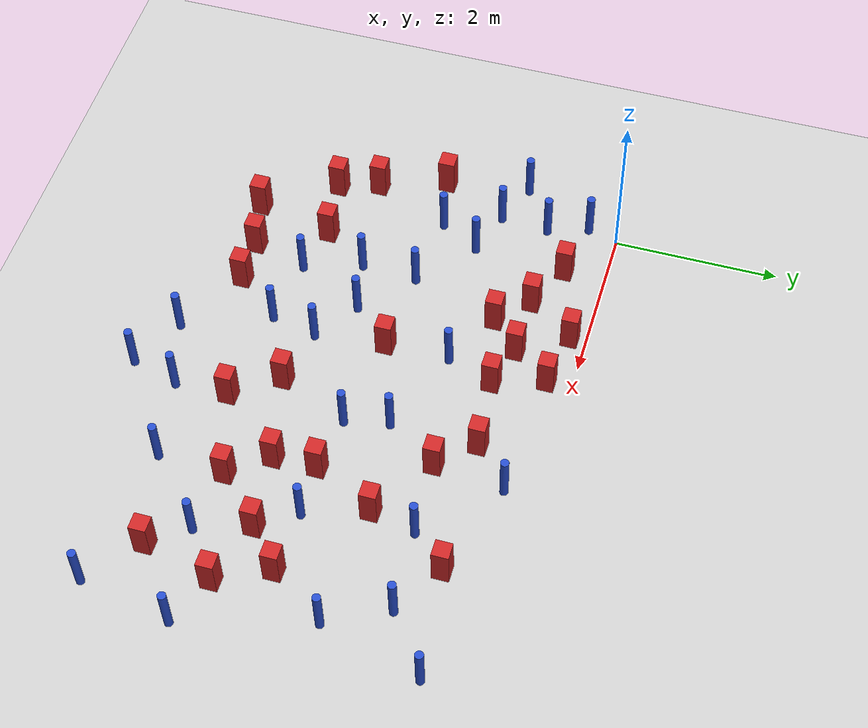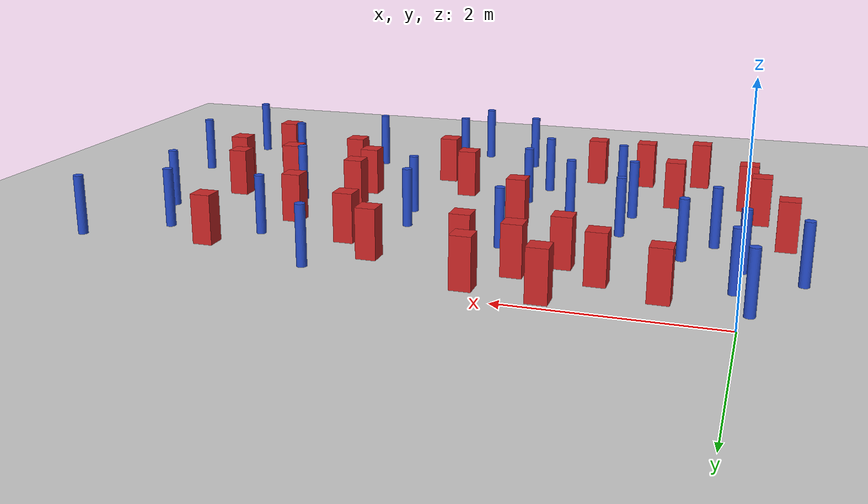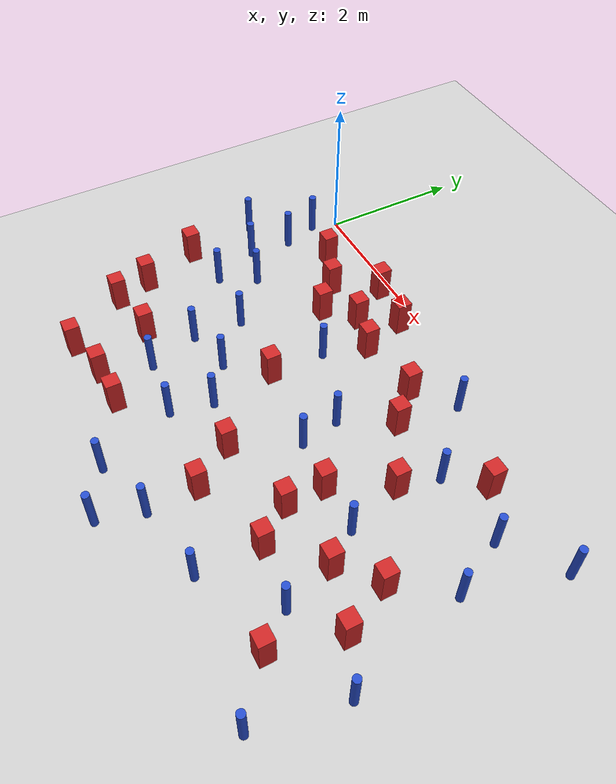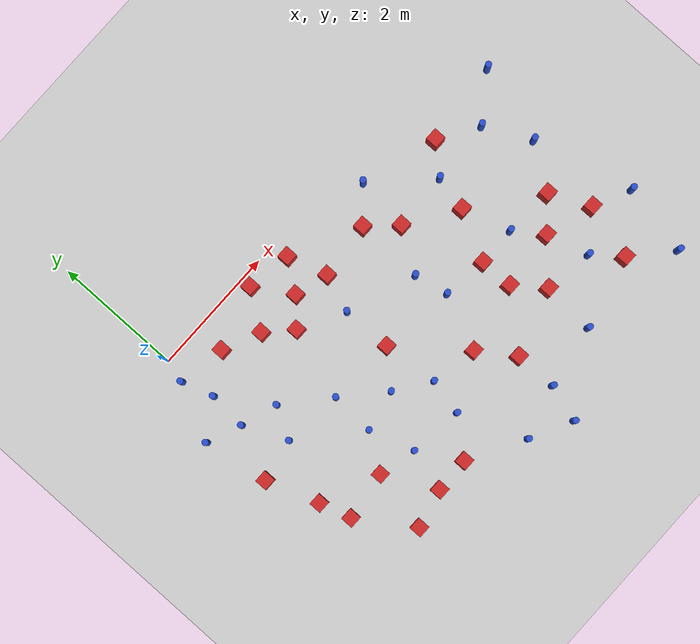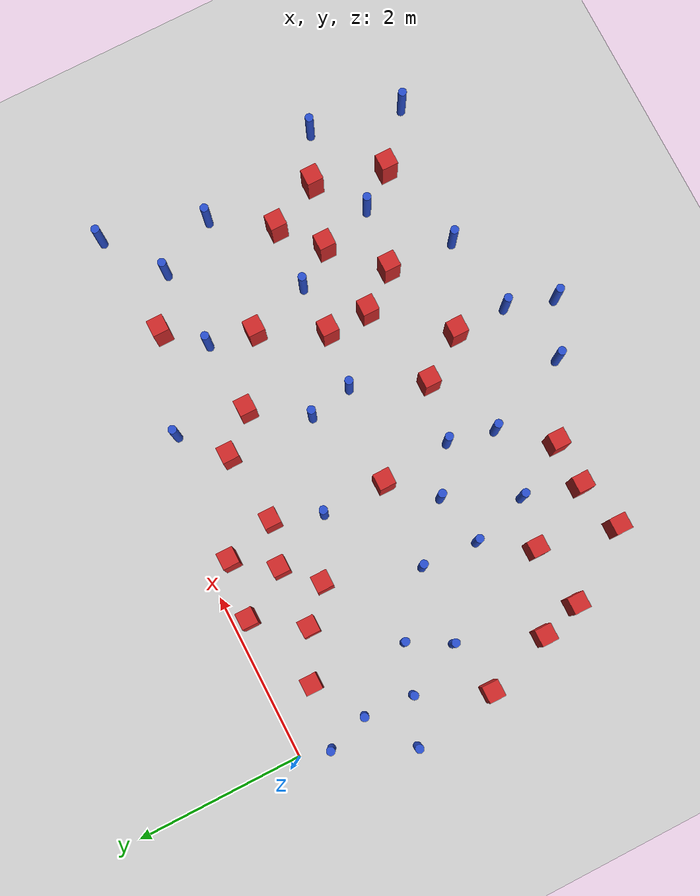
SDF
<sdf version="1.6">
 <world name="default">
  <model name="ground_plane">
   <static>1</static>
   <link name="link">
    <collision name="collision">
     <geometry><plane><normal>0 0 1</normal><size>100 100</size></plane></geometry>
     <surface><friction><ode><mu>100</mu><mu2>50</mu2></ode></friction></surface>
    </collision>
    <visual name="visual">
     <cast_shadows>0</cast_shadows>
     <geometry><plane><normal>0 0 1</normal><size>100 100</size></plane></geometry>
     <material>
      <ambient>1.0 1.0 1.0 1.0</ambient>
      <diffuse>0.8 0.8 0.8 1.0</diffuse>
      <specular>0.01 0.01 0.01 1.000000</specular>
     </material>
    </visual>
   </link>
  </model>
  <model name="pole_obstacle2">
   <static>true</static>
   <pose>2.2962242068 -1.4888534437 2.88873142074e-08 -9.90536689395e-09 4.60219949e-07 -1.20965994953e-07</pose>
   <link name="link">
    <pose>0 0 0.3 0 -0 0</pose>
    <inertial>
     <mass>1</mass>
     <inertia><ixx>0.145833</ixx><ixy>0</ixy><ixz>0</ixz><iyy>0.145833</iyy><iyz>0</iyz><izz>0.125</izz></inertia>
    </inertial>
    <collision name="collision">
     <geometry><cylinder><radius>0.05</radius><length>.6</length></cylinder></geometry>
    </collision>
    <visual name="visual">
     <geometry><cylinder><radius>0.05</radius><length>.6</length></cylinder></geometry>
     <material>
      <script><name>Gazebo/Blue</name><uri>file://media/materials/scripts/gazebo.material</uri></script>
     </material>
    </visual>
   </link>
  </model>
  <model name="square_post_obstacle3">
   <static>true</static>
   <pose>0.649831899917 -4.38141495095 8.22691968438e-08 7.2212513382e-06 -7.54495500217e-07 2.29674213826e-05</pose>
   <link name="link">
    <pose>0 0 0.25 0 -0 0</pose>
    <inertial>
     <mass>100</mass>
     <inertia>
      <ixx>0.166667</ixx>
      <ixy>0</ixy>
      <ixz>0</ixz>
      <iyy>0.166667</iyy>
      <iyz>0</iyz>
      <izz>0.166667</izz>
     </inertia>
    </inertial>
    <collision name="collision"><geometry><box><size>.2 .2 .5</size></box></geometry></collision>
    <visual name="visual">
     <geometry><box><size>.2 .2 .5</size></box></geometry>
     <material>
      <script><name>Gazebo/Red</name><uri>file://media/materials/scripts/gazebo.material</uri></script>
     </material>
    </visual>
   </link>
  </model>
  <model name="square_post_obstacle9">
   <static>true</static>
   <pose>4.55265677915 -1.7423102586 8.22691968438e-08 7.2212513382e-06 -7.54495500217e-07 2.29674213826e-05</pose>
   <link name="link">
    <pose>0 0 0.25 0 -0 0</pose>
    <inertial>
     <mass>100</mass>
     <inertia>
      <ixx>0.166667</ixx>
      <ixy>0</ixy>
      <ixz>0</ixz>
      <iyy>0.166667</iyy>
      <iyz>0</iyz>
      <izz>0.166667</izz>
     </inertia>
    </inertial>
    <collision name="collision"><geometry><box><size>.2 .2 .5</size></box></geometry></collision>
    <visual name="visual">
     <geometry><box><size>.2 .2 .5</size></box></geometry>
     <material>
      <script><name>Gazebo/Red</name><uri>file://media/materials/scripts/gazebo.material</uri></script>
     </material>
    </visual>
   </link>
  </model>
  <model name="pole_obstacle19">
   <static>true</static>
   <pose>0.588792365481 -1.63276097775 2.88873142074e-08 -9.90536689855e-09 4.60219948989e-07 -1.20965994962e-07</pose>
   <link name="link">
    <pose>0 0 0.3 0 -0 0</pose>
    <inertial>
     <mass>1</mass>
     <inertia><ixx>0.145833</ixx><ixy>0</ixy><ixz>0</ixz><iyy>0.145833</iyy><iyz>0</iyz><izz>0.125</izz></inertia>
    </inertial>
    <collision name="collision">
     <geometry><cylinder><radius>0.05</radius><length>.6</length></cylinder></geometry>
    </collision>
    <visual name="visual">
     <geometry><cylinder><radius>0.05</radius><length>.6</length></cylinder></geometry>
     <material>
      <script><name>Gazebo/Blue</name><uri>file://media/materials/scripts/gazebo.material</uri></script>
     </material>
    </visual>
   </link>
  </model>
  <model name="pole_obstacle20">
   <static>true</static>
   <pose>1.43550185561 -3.58304347874 2.88873142074e-08 -9.90536689791e-09 4.6021994899e-07 -1.20965994959e-07</pose>
   <link name="link">
    <pose>0 0 0.3 0 -0 0</pose>
    <inertial>
     <mass>1</mass>
     <inertia><ixx>0.145833</ixx><ixy>0</ixy><ixz>0</ixz><iyy>0.145833</iyy><iyz>0</iyz><izz>0.125</izz></inertia>
    </inertial>
    <collision name="collision">
     <geometry><cylinder><radius>0.05</radius><length>.6</length></cylinder></geometry>
    </collision>
    <visual name="visual">
     <geometry><cylinder><radius>0.05</radius><length>.6</length></cylinder></geometry>
     <material>
      <script><name>Gazebo/Blue</name><uri>file://media/materials/scripts/gazebo.material</uri></script>
     </material>
    </visual>
   </link>
  </model>
  <model name="pole_obstacle25">
   <static>true</static>
   <pose>5.66885229057 -1.13898330603 2.88873142074e-08 -9.90536689445e-09 4.60219948999e-07 -1.20965994956e-07</pose>
   <link name="link">
    <pose>0 0 0.3 0 -0 0</pose>
    <inertial>
     <mass>1</mass>
     <inertia><ixx>0.145833</ixx><ixy>0</ixy><ixz>0</ixz><iyy>0.145833</iyy><iyz>0</iyz><izz>0.125</izz></inertia>
    </inertial>
    <collision name="collision">
     <geometry><cylinder><radius>0.05</radius><length>.6</length></cylinder></geometry>
    </collision>
    <visual name="visual">
     <geometry><cylinder><radius>0.05</radius><length>.6</length></cylinder></geometry>
     <material>
      <script><name>Gazebo/Blue</name><uri>file://media/materials/scripts/gazebo.material</uri></script>
     </material>
    </visual>
   </link>
  </model>
  <model name="pole_obstacle38">
   <static>true</static>
   <pose>2.38835338203 -3.12073264131 2.88873142074e-08 -9.90536690232e-09 4.6021994898e-07 -1.20965994968e-07</pose>
   <link name="link">
    <pose>0 0 0.3 0 -0 0</pose>
    <inertial>
     <mass>1</mass>
     <inertia><ixx>0.145833</ixx><ixy>0</ixy><ixz>0</ixz><iyy>0.145833</iyy><iyz>0</iyz><izz>0.125</izz></inertia>
    </inertial>
    <collision name="collision">
     <geometry><cylinder><radius>0.05</radius><length>.6</length></cylinder></geometry>
    </collision>
    <visual name="visual">
     <geometry><cylinder><radius>0.05</radius><length>.6</length></cylinder></geometry>
     <material>
      <script><name>Gazebo/Blue</name><uri>file://media/materials/scripts/gazebo.material</uri></script>
     </material>
    </visual>
   </link>
  </model>
  <model name="square_post_obstacle33">
   <static>true</static>
   <pose>0.0892033888805 -3.54546931048 8.22691968438e-08 7.22125133819e-06 -7.54495500217e-07 2.29674213826e-05</pose>
   <link name="link">
    <pose>0 0 0.25 0 -0 0</pose>
    <inertial>
     <mass>100</mass>
     <inertia>
      <ixx>0.166667</ixx>
      <ixy>0</ixy>
      <ixz>0</ixz>
      <iyy>0.166667</iyy>
      <iyz>0</iyz>
      <izz>0.166667</izz>
     </inertia>
    </inertial>
    <collision name="collision"><geometry><box><size>.2 .2 .5</size></box></geometry></collision>
    <visual name="visual">
     <geometry><box><size>.2 .2 .5</size></box></geometry>
     <material>
      <script><name>Gazebo/Red</name><uri>file://media/materials/scripts/gazebo.material</uri></script>
     </material>
    </visual>
   </link>
  </model>
  <model name="square_post_obstacle36">
   <static>true</static>
   <pose>4.52311479573 -3.47080743803 8.22691968438e-08 7.2212513382e-06 -7.54495500217e-07 2.29674213826e-05</pose>
   <link name="link">
    <pose>0 0 0.25 0 -0 0</pose>
    <inertial>
     <mass>100</mass>
     <inertia>
      <ixx>0.166667</ixx>
      <ixy>0</ixy>
      <ixz>0</ixz>
      <iyy>0.166667</iyy>
      <iyz>0</iyz>
      <izz>0.166667</izz>
     </inertia>
    </inertial>
    <collision name="collision"><geometry><box><size>.2 .2 .5</size></box></geometry></collision>
    <visual name="visual">
     <geometry><box><size>.2 .2 .5</size></box></geometry>
     <material>
      <script><name>Gazebo/Red</name><uri>file://media/materials/scripts/gazebo.material</uri></script>
     </material>
    </visual>
   </link>
  </model>
  <model name="square_post_obstacle40">
   <static>true</static>
   <pose>3.7764458147 -1.24048378066 8.22691968438e-08 7.2212513382e-06 -7.54495500217e-07 2.29674213826e-05</pose>
   <link name="link">
    <pose>0 0 0.25 0 -0 0</pose>
    <inertial>
     <mass>100</mass>
     <inertia>
      <ixx>0.166667</ixx>
      <ixy>0</ixy>
      <ixz>0</ixz>
      <iyy>0.166667</iyy>
      <iyz>0</iyz>
      <izz>0.166667</izz>
     </inertia>
    </inertial>
    <collision name="collision"><geometry><box><size>.2 .2 .5</size></box></geometry></collision>
    <visual name="visual">
     <geometry><box><size>.2 .2 .5</size></box></geometry>
     <material>
      <script><name>Gazebo/Red</name><uri>file://media/materials/scripts/gazebo.material</uri></script>
     </material>
    </visual>
   </link>
  </model>
  <model name="pole_obstacle56">
   <static>true</static>
   <pose>3.32120589684 -5.03993987062 2.88873142074e-08 -9.90536689859e-09 4.60219948989e-07 -1.20965994961e-07</pose>
   <link name="link">
    <pose>0 0 0.3 0 -0 0</pose>
    <inertial>
     <mass>1</mass>
     <inertia><ixx>0.145833</ixx><ixy>0</ixy><ixz>0</ixz><iyy>0.145833</iyy><iyz>0</iyz><izz>0.125</izz></inertia>
    </inertial>
    <collision name="collision">
     <geometry><cylinder><radius>0.05</radius><length>.6</length></cylinder></geometry>
    </collision>
    <visual name="visual">
     <geometry><cylinder><radius>0.05</radius><length>.6</length></cylinder></geometry>
     <material>
      <script><name>Gazebo/Blue</name><uri>file://media/materials/scripts/gazebo.material</uri></script>
     </material>
    </visual>
   </link>
  </model>
  <model name="square_post_obstacle45">
   <static>true</static>
   <pose>4.17633040854 -3.01495379571 8.22691968438e-08 7.2212513382e-06 -7.54495500217e-07 2.29674213826e-05</pose>
   <link name="link">
    <pose>0 0 0.25 0 -0 0</pose>
    <inertial>
     <mass>100</mass>
     <inertia>
      <ixx>0.166667</ixx>
      <ixy>0</ixy>
      <ixz>0</ixz>
      <iyy>0.166667</iyy>
      <iyz>0</iyz>
      <izz>0.166667</izz>
     </inertia>
    </inertial>
    <collision name="collision"><geometry><box><size>.2 .2 .5</size></box></geometry></collision>
    <visual name="visual">
     <geometry><box><size>.2 .2 .5</size></box></geometry>
     <material>
      <script><name>Gazebo/Red</name><uri>file://media/materials/scripts/gazebo.material</uri></script>
     </material>
    </visual>
   </link>
  </model>
  <model name="pole_obstacle64">
   <static>true</static>
   <pose>0.0255443950892 -1.44876111784 2.88873142074e-08 -9.9053669004e-09 4.60219948984e-07 -1.20965994962e-07</pose>
   <link name="link">
    <pose>0 0 0.3 0 -0 0</pose>
    <inertial>
     <mass>1</mass>
     <inertia><ixx>0.145833</ixx><ixy>0</ixy><ixz>0</ixz><iyy>0.145833</iyy><iyz>0</iyz><izz>0.125</izz></inertia>
    </inertial>
    <collision name="collision">
     <geometry><cylinder><radius>0.05</radius><length>.6</length></cylinder></geometry>
    </collision>
    <visual name="visual">
     <geometry><cylinder><radius>0.05</radius><length>.6</length></cylinder></geometry>
     <material>
      <script><name>Gazebo/Blue</name><uri>file://media/materials/scripts/gazebo.material</uri></script>
     </material>
    </visual>
   </link>
  </model>
  <model name="square_post_obstacle56">
   <static>true</static>
   <pose>1.62164734669 -0.188410075844 8.22691968438e-08 7.2212513382e-06 -7.54495500217e-07 2.29674213826e-05</pose>
   <link name="link">
    <pose>0 0 0.25 0 -0 0</pose>
    <inertial>
     <mass>100</mass>
     <inertia>
      <ixx>0.166667</ixx>
      <ixy>0</ixy>
      <ixz>0</ixz>
      <iyy>0.166667</iyy>
      <iyz>0</iyz>
      <izz>0.166667</izz>
     </inertia>
    </inertial>
    <collision name="collision"><geometry><box><size>.2 .2 .5</size></box></geometry></collision>
    <visual name="visual">
     <geometry><box><size>.2 .2 .5</size></box></geometry>
     <material>
      <script><name>Gazebo/Red</name><uri>file://media/materials/scripts/gazebo.material</uri></script>
     </material>
    </visual>
   </link>
  </model>
  <model name="square_post_obstacle62">
   <static>true</static>
   <pose>5.05585036338 -0.770505505517 8.22691968438e-08 7.2212513382e-06 -7.54495500217e-07 2.29674213826e-05</pose>
   <link name="link">
    <pose>0 0 0.25 0 -0 0</pose>
    <inertial>
     <mass>100</mass>
     <inertia>
      <ixx>0.166667</ixx>
      <ixy>0</ixy>
      <ixz>0</ixz>
      <iyy>0.166667</iyy>
      <iyz>0</iyz>
      <izz>0.166667</izz>
     </inertia>
    </inertial>
    <collision name="collision"><geometry><box><size>.2 .2 .5</size></box></geometry></collision>
    <visual name="visual">
     <geometry><box><size>.2 .2 .5</size></box></geometry>
     <material>
      <script><name>Gazebo/Red</name><uri>file://media/materials/scripts/gazebo.material</uri></script>
     </material>
    </visual>
   </link>
  </model>
  <model name="pole_obstacle83">
   <static>true</static>
   <pose>3.49573494244 -4.46277911587 2.88873142074e-08 -9.90536689859e-09 4.60219948989e-07 -1.20965994961e-07</pose>
   <link name="link">
    <pose>0 0 0.3 0 -0 0</pose>
    <inertial>
     <mass>1</mass>
     <inertia><ixx>0.145833</ixx><ixy>0</ixy><ixz>0</ixz><iyy>0.145833</iyy><iyz>0</iyz><izz>0.125</izz></inertia>
    </inertial>
    <collision name="collision">
     <geometry><cylinder><radius>0.05</radius><length>.6</length></cylinder></geometry>
    </collision>
    <visual name="visual">
     <geometry><cylinder><radius>0.05</radius><length>.6</length></cylinder></geometry>
     <material>
      <script><name>Gazebo/Blue</name><uri>file://media/materials/scripts/gazebo.material</uri></script>
     </material>
    </visual>
   </link>
  </model>
  <model name="pole_obstacle84">
   <static>true</static>
   <pose>1.25003998977 -2.2059578337 2.88873142074e-08 -9.90536689791e-09 4.6021994899e-07 -1.20965994959e-07</pose>
   <link name="link">
    <pose>0 0 0.3 0 -0 0</pose>
    <inertial>
     <mass>1</mass>
     <inertia><ixx>0.145833</ixx><ixy>0</ixy><ixz>0</ixz><iyy>0.145833</iyy><iyz>0</iyz><izz>0.125</izz></inertia>
    </inertial>
    <collision name="collision">
     <geometry><cylinder><radius>0.05</radius><length>.6</length></cylinder></geometry>
    </collision>
    <visual name="visual">
     <geometry><cylinder><radius>0.05</radius><length>.6</length></cylinder></geometry>
     <material>
      <script><name>Gazebo/Blue</name><uri>file://media/materials/scripts/gazebo.material</uri></script>
     </material>
    </visual>
   </link>
  </model>
  <model name="square_post_obstacle77">
   <static>true</static>
   <pose>5.61824060183 -4.00313550128 8.22691968438e-08 7.2212513382e-06 -7.54495500217e-07 2.29674213826e-05</pose>
   <link name="link">
    <pose>0 0 0.25 0 -0 0</pose>
    <inertial>
     <mass>100</mass>
     <inertia>
      <ixx>0.166667</ixx>
      <ixy>0</ixy>
      <ixz>0</ixz>
      <iyy>0.166667</iyy>
      <iyz>0</iyz>
      <izz>0.166667</izz>
     </inertia>
    </inertial>
    <collision name="collision"><geometry><box><size>.2 .2 .5</size></box></geometry></collision>
    <visual name="visual">
     <geometry><box><size>.2 .2 .5</size></box></geometry>
     <material>
      <script><name>Gazebo/Red</name><uri>file://media/materials/scripts/gazebo.material</uri></script>
     </material>
    </visual>
   </link>
  </model>
  <model name="square_post_obstacle89">
   <static>true</static>
   <pose>1.8095217288 -4.22510068687 8.22691968438e-08 7.2212513382e-06 -7.54495500217e-07 2.29674213826e-05</pose>
   <link name="link">
    <pose>0 0 0.25 0 -0 0</pose>
    <inertial>
     <mass>100</mass>
     <inertia>
      <ixx>0.166667</ixx>
      <ixy>0</ixy>
      <ixz>0</ixz>
      <iyy>0.166667</iyy>
      <iyz>0</iyz>
      <izz>0.166667</izz>
     </inertia>
    </inertial>
    <collision name="collision"><geometry><box><size>.2 .2 .5</size></box></geometry></collision>
    <visual name="visual">
     <geometry><box><size>.2 .2 .5</size></box></geometry>
     <material>
      <script><name>Gazebo/Red</name><uri>file://media/materials/scripts/gazebo.material</uri></script>
     </material>
    </visual>
   </link>
  </model>
  <model name="square_post_obstacle90">
   <static>true</static>
   <pose>3.10743166794 -3.25855165849 8.22691968438e-08 7.2212513382e-06 -7.54495500217e-07 2.29674213826e-05</pose>
   <link name="link">
    <pose>0 0 0.25 0 -0 0</pose>
    <inertial>
     <mass>100</mass>
     <inertia>
      <ixx>0.166667</ixx>
      <ixy>0</ixy>
      <ixz>0</ixz>
      <iyy>0.166667</iyy>
      <iyz>0</iyz>
      <izz>0.166667</izz>
     </inertia>
    </inertial>
    <collision name="collision"><geometry><box><size>.2 .2 .5</size></box></geometry></collision>
    <visual name="visual">
     <geometry><box><size>.2 .2 .5</size></box></geometry>
     <material>
      <script><name>Gazebo/Red</name><uri>file://media/materials/scripts/gazebo.material</uri></script>
     </material>
    </visual>
   </link>
  </model>
  <model name="square_post_obstacle92">
   <static>true</static>
   <pose>1.25656775713 -4.23679575135 8.22691968438e-08 7.2212513382e-06 -7.54495500217e-07 2.29674213826e-05</pose>
   <link name="link">
    <pose>0 0 0.25 0 -0 0</pose>
    <inertial>
     <mass>100</mass>
     <inertia>
      <ixx>0.166667</ixx>
      <ixy>0</ixy>
      <ixz>0</ixz>
      <iyy>0.166667</iyy>
      <iyz>0</iyz>
      <izz>0.166667</izz>
     </inertia>
    </inertial>
    <collision name="collision"><geometry><box><size>.2 .2 .5</size></box></geometry></collision>
    <visual name="visual">
     <geometry><box><size>.2 .2 .5</size></box></geometry>
     <material>
      <script><name>Gazebo/Red</name><uri>file://media/materials/scripts/gazebo.material</uri></script>
     </material>
    </visual>
   </link>
  </model>
  <model name="square_post_obstacle94">
   <static>true</static>
   <pose>2.30671741514 -2.26106769189 8.22691968438e-08 7.2212513382e-06 -7.54495500217e-07 2.29674213826e-05</pose>
   <link name="link">
    <pose>0 0 0.25 0 -0 0</pose>
    <inertial>
     <mass>100</mass>
     <inertia>
      <ixx>0.166667</ixx>
      <ixy>0</ixy>
      <ixz>0</ixz>
      <iyy>0.166667</iyy>
      <iyz>0</iyz>
      <izz>0.166667</izz>
     </inertia>
    </inertial>
    <collision name="collision"><geometry><box><size>.2 .2 .5</size></box></geometry></collision>
    <visual name="visual">
     <geometry><box><size>.2 .2 .5</size></box></geometry>
     <material>
      <script><name>Gazebo/Red</name><uri>file://media/materials/scripts/gazebo.material</uri></script>
     </material>
    </visual>
   </link>
  </model>
  <model name="square_post_obstacle99">
   <static>true</static>
   <pose>5.85339930895 -3.14866693555 8.22691968438e-08 7.2212513382e-06 -7.54495500217e-07 2.29674213826e-05</pose>
   <link name="link">
    <pose>0 0 0.25 0 -0 0</pose>
    <inertial>
     <mass>100</mass>
     <inertia>
      <ixx>0.166667</ixx>
      <ixy>0</ixy>
      <ixz>0</ixz>
      <iyy>0.166667</iyy>
      <iyz>0</iyz>
      <izz>0.166667</izz>
     </inertia>
    </inertial>
    <collision name="collision"><geometry><box><size>.2 .2 .5</size></box></geometry></collision>
    <visual name="visual">
     <geometry><box><size>.2 .2 .5</size></box></geometry>
     <material>
      <script><name>Gazebo/Red</name><uri>file://media/materials/scripts/gazebo.material</uri></script>
     </material>
    </visual>
   </link>
  </model>
  <model name="square_post_obstacle101">
   <static>true</static>
   <pose>-0.0577121408246 -3.0572782452 8.22691968438e-08 7.2212513382e-06 -7.54495500217e-07 2.29674213826e-05</pose>
   <link name="link">
    <pose>0 0 0.25 0 -0 0</pose>
    <inertial>
     <mass>100</mass>
     <inertia>
      <ixx>0.166667</ixx>
      <ixy>0</ixy>
      <ixz>0</ixz>
      <iyy>0.166667</iyy>
      <iyz>0</iyz>
      <izz>0.166667</izz>
     </inertia>
    </inertial>
    <collision name="collision"><geometry><box><size>.2 .2 .5</size></box></geometry></collision>
    <visual name="visual">
     <geometry><box><size>.2 .2 .5</size></box></geometry>
     <material>
      <script><name>Gazebo/Red</name><uri>file://media/materials/scripts/gazebo.material</uri></script>
     </material>
    </visual>
   </link>
  </model>
  <model name="pole_obstacle107">
   <static>true</static>
   <pose>2.67331923107 -4.71079884765 2.88873142074e-08 -9.90536689859e-09 4.60219948989e-07 -1.20965994961e-07</pose>
   <link name="link">
    <pose>0 0 0.3 0 -0 0</pose>
    <inertial>
     <mass>1</mass>
     <inertia><ixx>0.145833</ixx><ixy>0</ixy><ixz>0</ixz><iyy>0.145833</iyy><iyz>0</iyz><izz>0.125</izz></inertia>
    </inertial>
    <collision name="collision">
     <geometry><cylinder><radius>0.05</radius><length>.6</length></cylinder></geometry>
    </collision>
    <visual name="visual">
     <geometry><cylinder><radius>0.05</radius><length>.6</length></cylinder></geometry>
     <material>
      <script><name>Gazebo/Blue</name><uri>file://media/materials/scripts/gazebo.material</uri></script>
     </material>
    </visual>
   </link>
  </model>
  <model name="pole_obstacle112">
   <static>true</static>
   <pose>3.8768844102 -0.394253109796 2.88873142074e-08 -9.90536689307e-09 4.60219949002e-07 -1.20965994954e-07</pose>
   <link name="link">
    <pose>0 0 0.3 0 -0 0</pose>
    <inertial>
     <mass>1</mass>
     <inertia><ixx>0.145833</ixx><ixy>0</ixy><ixz>0</ixz><iyy>0.145833</iyy><iyz>0</iyz><izz>0.125</izz></inertia>
    </inertial>
    <collision name="collision">
     <geometry><cylinder><radius>0.05</radius><length>.6</length></cylinder></geometry>
    </collision>
    <visual name="visual">
     <geometry><cylinder><radius>0.05</radius><length>.6</length></cylinder></geometry>
     <material>
      <script><name>Gazebo/Blue</name><uri>file://media/materials/scripts/gazebo.material</uri></script>
     </material>
    </visual>
   </link>
  </model>
  <model name="pole_obstacle117">
   <static>true</static>
   <pose>-0.50451601943 -1.23493781978 2.88873142074e-08 -9.90536689621e-09 4.60219948994e-07 -1.20965994957e-07</pose>
   <link name="link">
    <pose>0 0 0.3 0 -0 0</pose>
    <inertial>
     <mass>1</mass>
     <inertia><ixx>0.145833</ixx><ixy>0</ixy><ixz>0</ixz><iyy>0.145833</iyy><iyz>0</iyz><izz>0.125</izz></inertia>
    </inertial>
    <collision name="collision">
     <geometry><cylinder><radius>0.05</radius><length>.6</length></cylinder></geometry>
    </collision>
    <visual name="visual">
     <geometry><cylinder><radius>0.05</radius><length>.6</length></cylinder></geometry>
     <material>
      <script><name>Gazebo/Blue</name><uri>file://media/materials/scripts/gazebo.material</uri></script>
     </material>
    </visual>
   </link>
  </model>
  <model name="square_post_obstacle118">
   <static>true</static>
   <pose>4.16838081712 -2.49480791466 8.22691968438e-08 7.2212513382e-06 -7.54495500217e-07 2.29674213826e-05</pose>
   <link name="link">
    <pose>0 0 0.25 0 -0 0</pose>
    <inertial>
     <mass>100</mass>
     <inertia>
      <ixx>0.166667</ixx>
      <ixy>0</ixy>
      <ixz>0</ixz>
      <iyy>0.166667</iyy>
      <iyz>0</iyz>
      <izz>0.166667</izz>
     </inertia>
    </inertial>
    <collision name="collision"><geometry><box><size>.2 .2 .5</size></box></geometry></collision>
    <visual name="visual">
     <geometry><box><size>.2 .2 .5</size></box></geometry>
     <material>
      <script><name>Gazebo/Red</name><uri>file://media/materials/scripts/gazebo.material</uri></script>
     </material>
    </visual>
   </link>
  </model>
  <model name="pole_obstacle118">
   <static>true</static>
   <pose>3.36569318858 -1.88205317828 2.88873142074e-08 -9.90536689395e-09 4.60219949e-07 -1.20965994953e-07</pose>
   <link name="link">
    <pose>0 0 0.3 0 -0 0</pose>
    <inertial>
     <mass>1</mass>
     <inertia><ixx>0.145833</ixx><ixy>0</ixy><ixz>0</ixz><iyy>0.145833</iyy><iyz>0</iyz><izz>0.125</izz></inertia>
    </inertial>
    <collision name="collision">
     <geometry><cylinder><radius>0.05</radius><length>.6</length></cylinder></geometry>
    </collision>
    <visual name="visual">
     <geometry><cylinder><radius>0.05</radius><length>.6</length></cylinder></geometry>
     <material>
      <script><name>Gazebo/Blue</name><uri>file://media/materials/scripts/gazebo.material</uri></script>
     </material>
    </visual>
   </link>
  </model>
  <model name="pole_obstacle119">
   <static>true</static>
   <pose>4.67677052068 -1.19657764846 2.88873142074e-08 -9.90536689445e-09 4.60219948999e-07 -1.20965994956e-07</pose>
   <link name="link">
    <pose>0 0 0.3 0 -0 0</pose>
    <inertial>
     <mass>1</mass>
     <inertia><ixx>0.145833</ixx><ixy>0</ixy><ixz>0</ixz><iyy>0.145833</iyy><iyz>0</iyz><izz>0.125</izz></inertia>
    </inertial>
    <collision name="collision">
     <geometry><cylinder><radius>0.05</radius><length>.6</length></cylinder></geometry>
    </collision>
    <visual name="visual">
     <geometry><cylinder><radius>0.05</radius><length>.6</length></cylinder></geometry>
     <material>
      <script><name>Gazebo/Blue</name><uri>file://media/materials/scripts/gazebo.material</uri></script>
     </material>
    </visual>
   </link>
  </model>
  <model name="pole_obstacle127">
   <static>true</static>
   <pose>3.47232825211 -2.41211965801 2.88873142074e-08 -9.90536690232e-09 4.6021994898e-07 -1.20965994968e-07</pose>
   <link name="link">
    <pose>0 0 0.3 0 -0 0</pose>
    <inertial>
     <mass>1</mass>
     <inertia><ixx>0.145833</ixx><ixy>0</ixy><ixz>0</ixz><iyy>0.145833</iyy><iyz>0</iyz><izz>0.125</izz></inertia>
    </inertial>
    <collision name="collision">
     <geometry><cylinder><radius>0.05</radius><length>.6</length></cylinder></geometry>
    </collision>
    <visual name="visual">
     <geometry><cylinder><radius>0.05</radius><length>.6</length></cylinder></geometry>
     <material>
      <script><name>Gazebo/Blue</name><uri>file://media/materials/scripts/gazebo.material</uri></script>
     </material>
    </visual>
   </link>
  </model>
  <model name="square_post_obstacle128">
   <static>true</static>
   <pose>1.97890754787 -0.763163713558 8.22691968438e-08 7.2212513382e-06 -7.54495500217e-07 2.29674213826e-05</pose>
   <link name="link">
    <pose>0 0 0.25 0 -0 0</pose>
    <inertial>
     <mass>100</mass>
     <inertia>
      <ixx>0.166667</ixx>
      <ixy>0</ixy>
      <ixz>0</ixz>
      <iyy>0.166667</iyy>
      <iyz>0</iyz>
      <izz>0.166667</izz>
     </inertia>
    </inertial>
    <collision name="collision"><geometry><box><size>.2 .2 .5</size></box></geometry></collision>
    <visual name="visual">
     <geometry><box><size>.2 .2 .5</size></box></geometry>
     <material>
      <script><name>Gazebo/Red</name><uri>file://media/materials/scripts/gazebo.material</uri></script>
     </material>
    </visual>
   </link>
  </model>
  <model name="square_post_obstacle129">
   <static>true</static>
   <pose>2.50159260979 -0.915140574881 8.22691968438e-08 7.2212513382e-06 -7.54495500217e-07 2.29674213826e-05</pose>
   <link name="link">
    <pose>0 0 0.25 0 -0 0</pose>
    <inertial>
     <mass>100</mass>
     <inertia>
      <ixx>0.166667</ixx>
      <ixy>0</ixy>
      <ixz>0</ixz>
      <iyy>0.166667</iyy>
      <iyz>0</iyz>
      <izz>0.166667</izz>
     </inertia>
    </inertial>
    <collision name="collision"><geometry><box><size>.2 .2 .5</size></box></geometry></collision>
    <visual name="visual">
     <geometry><box><size>.2 .2 .5</size></box></geometry>
     <material>
      <script><name>Gazebo/Red</name><uri>file://media/materials/scripts/gazebo.material</uri></script>
     </material>
    </visual>
   </link>
  </model>
  <model name="pole_obstacle144">
   <static>true</static>
   <pose>0.0679028331936 -0.858587578903 2.88873142074e-08 -9.90536689915e-09 4.60219948987e-07 -1.20965994961e-07</pose>
   <link name="link">
    <pose>0 0 0.3 0 -0 0</pose>
    <inertial>
     <mass>1</mass>
     <inertia><ixx>0.145833</ixx><ixy>0</ixy><ixz>0</ixz><iyy>0.145833</iyy><iyz>0</iyz><izz>0.125</izz></inertia>
    </inertial>
    <collision name="collision">
     <geometry><cylinder><radius>0.05</radius><length>.6</length></cylinder></geometry>
    </collision>
    <visual name="visual">
     <geometry><cylinder><radius>0.05</radius><length>.6</length></cylinder></geometry>
     <material>
      <script><name>Gazebo/Blue</name><uri>file://media/materials/scripts/gazebo.material</uri></script>
     </material>
    </visual>
   </link>
  </model>
  <model name="pole_obstacle148">
   <static>true</static>
   <pose>0.323167875058 -2.1166250466 2.88873142074e-08 -9.90536689663e-09 4.60219948993e-07 -1.20965994959e-07</pose>
   <link name="link">
    <pose>0 0 0.3 0 -0 0</pose>
    <inertial>
     <mass>1</mass>
     <inertia><ixx>0.145833</ixx><ixy>0</ixy><ixz>0</ixz><iyy>0.145833</iyy><iyz>0</iyz><izz>0.125</izz></inertia>
    </inertial>
    <collision name="collision">
     <geometry><cylinder><radius>0.05</radius><length>.6</length></cylinder></geometry>
    </collision>
    <visual name="visual">
     <geometry><cylinder><radius>0.05</radius><length>.6</length></cylinder></geometry>
     <material>
      <script><name>Gazebo/Blue</name><uri>file://media/materials/scripts/gazebo.material</uri></script>
     </material>
    </visual>
   </link>
  </model>
  <model name="square_post_obstacle145">
   <static>true</static>
   <pose>3.38344947118 -0.82722733839 8.22691968438e-08 7.2212513382e-06 -7.54495500217e-07 2.29674213826e-05</pose>
   <link name="link">
    <pose>0 0 0.25 0 -0 0</pose>
    <inertial>
     <mass>100</mass>
     <inertia>
      <ixx>0.166667</ixx>
      <ixy>0</ixy>
      <ixz>0</ixz>
      <iyy>0.166667</iyy>
      <iyz>0</iyz>
      <izz>0.166667</izz>
     </inertia>
    </inertial>
    <collision name="collision"><geometry><box><size>.2 .2 .5</size></box></geometry></collision>
    <visual name="visual">
     <geometry><box><size>.2 .2 .5</size></box></geometry>
     <material>
      <script><name>Gazebo/Red</name><uri>file://media/materials/scripts/gazebo.material</uri></script>
     </material>
    </visual>
   </link>
  </model>
  <model name="square_post_obstacle155">
   <static>true</static>
   <pose>5.56018678532 -2.52820067421 8.22691968438e-08 7.2212513382e-06 -7.54495500217e-07 2.29674213826e-05</pose>
   <link name="link">
    <pose>0 0 0.25 0 -0 0</pose>
    <inertial>
     <mass>100</mass>
     <inertia>
      <ixx>0.166667</ixx>
      <ixy>0</ixy>
      <ixz>0</ixz>
      <iyy>0.166667</iyy>
      <iyz>0</iyz>
      <izz>0.166667</izz>
     </inertia>
    </inertial>
    <collision name="collision"><geometry><box><size>.2 .2 .5</size></box></geometry></collision>
    <visual name="visual">
     <geometry><box><size>.2 .2 .5</size></box></geometry>
     <material>
      <script><name>Gazebo/Red</name><uri>file://media/materials/scripts/gazebo.material</uri></script>
     </material>
    </visual>
   </link>
  </model>
  <model name="pole_obstacle167">
   <static>true</static>
   <pose>2.26507590666 -3.68100357299 2.88873142074e-08 -9.90536690232e-09 4.6021994898e-07 -1.20965994968e-07</pose>
   <link name="link">
    <pose>0 0 0.3 0 -0 0</pose>
    <inertial>
     <mass>1</mass>
     <inertia><ixx>0.145833</ixx><ixy>0</ixy><ixz>0</ixz><iyy>0.145833</iyy><iyz>0</iyz><izz>0.125</izz></inertia>
    </inertial>
    <collision name="collision">
     <geometry><cylinder><radius>0.05</radius><length>.6</length></cylinder></geometry>
    </collision>
    <visual name="visual">
     <geometry><cylinder><radius>0.05</radius><length>.6</length></cylinder></geometry>
     <material>
      <script><name>Gazebo/Blue</name><uri>file://media/materials/scripts/gazebo.material</uri></script>
     </material>
    </visual>
   </link>
  </model>
  <model name="pole_obstacle175">
   <static>true</static>
   <pose>4.48145880744 -4.29118954115 2.88873142074e-08 -9.90536690842e-09 4.60219948965e-07 -1.20965994976e-07</pose>
   <link name="link">
    <pose>0 0 0.3 0 -0 0</pose>
    <inertial>
     <mass>1</mass>
     <inertia><ixx>0.145833</ixx><ixy>0</ixy><ixz>0</ixz><iyy>0.145833</iyy><iyz>0</iyz><izz>0.125</izz></inertia>
    </inertial>
    <collision name="collision">
     <geometry><cylinder><radius>0.05</radius><length>.6</length></cylinder></geometry>
    </collision>
    <visual name="visual">
     <geometry><cylinder><radius>0.05</radius><length>.6</length></cylinder></geometry>
     <material>
      <script><name>Gazebo/Blue</name><uri>file://media/materials/scripts/gazebo.material</uri></script>
     </material>
    </visual>
   </link>
  </model>
  <model name="pole_obstacle178">
   <static>true</static>
   <pose>5.2909062302 -3.57897602306 2.88873142074e-08 -9.90536690245e-09 4.6021994898e-07 -1.20965994966e-07</pose>
   <link name="link">
    <pose>0 0 0.3 0 -0 0</pose>
    <inertial>
     <mass>1</mass>
     <inertia><ixx>0.145833</ixx><ixy>0</ixy><ixz>0</ixz><iyy>0.145833</iyy><iyz>0</iyz><izz>0.125</izz></inertia>
    </inertial>
    <collision name="collision">
     <geometry><cylinder><radius>0.05</radius><length>.6</length></cylinder></geometry>
    </collision>
    <visual name="visual">
     <geometry><cylinder><radius>0.05</radius><length>.6</length></cylinder></geometry>
     <material>
      <script><name>Gazebo/Blue</name><uri>file://media/materials/scripts/gazebo.material</uri></script>
     </material>
    </visual>
   </link>
  </model>
  <model name="square_post_obstacle178">
   <static>true</static>
   <pose>1.60563247043 -1.11619018956 8.22691968438e-08 7.2212513382e-06 -7.54495500217e-07 2.29674213826e-05</pose>
   <link name="link">
    <pose>0 0 0.25 0 -0 0</pose>
    <inertial>
     <mass>100</mass>
     <inertia>
      <ixx>0.166667</ixx>
      <ixy>0</ixy>
      <ixz>0</ixz>
      <iyy>0.166667</iyy>
      <iyz>0</iyz>
      <izz>0.166667</izz>
     </inertia>
    </inertial>
    <collision name="collision"><geometry><box><size>.2 .2 .5</size></box></geometry></collision>
    <visual name="visual">
     <geometry><box><size>.2 .2 .5</size></box></geometry>
     <material>
      <script><name>Gazebo/Red</name><uri>file://media/materials/scripts/gazebo.material</uri></script>
     </material>
    </visual>
   </link>
  </model>
  <model name="pole_obstacle181">
   <static>true</static>
   <pose>6.0255778829 -1.85496543755 2.88873142074e-08 -9.90536689445e-09 4.60219948999e-07 -1.20965994956e-07</pose>
   <link name="link">
    <pose>0 0 0.3 0 -0 0</pose>
    <inertial>
     <mass>1</mass>
     <inertia><ixx>0.145833</ixx><ixy>0</ixy><ixz>0</ixz><iyy>0.145833</iyy><iyz>0</iyz><izz>0.125</izz></inertia>
    </inertial>
    <collision name="collision">
     <geometry><cylinder><radius>0.05</radius><length>.6</length></cylinder></geometry>
    </collision>
    <visual name="visual">
     <geometry><cylinder><radius>0.05</radius><length>.6</length></cylinder></geometry>
     <material>
      <script><name>Gazebo/Blue</name><uri>file://media/materials/scripts/gazebo.material</uri></script>
     </material>
    </visual>
   </link>
  </model>
  <model name="square_post_obstacle181">
   <static>true</static>
   <pose>0.846672835892 -3.44081991568 8.22691968438e-08 7.2212513382e-06 -7.54495500217e-07 2.29674213826e-05</pose>
   <link name="link">
    <pose>0 0 0.25 0 -0 0</pose>
    <inertial>
     <mass>100</mass>
     <inertia>
      <ixx>0.166667</ixx>
      <ixy>0</ixy>
      <ixz>0</ixz>
      <iyy>0.166667</iyy>
      <iyz>0</iyz>
      <izz>0.166667</izz>
     </inertia>
    </inertial>
    <collision name="collision"><geometry><box><size>.2 .2 .5</size></box></geometry></collision>
    <visual name="visual">
     <geometry><box><size>.2 .2 .5</size></box></geometry>
     <material>
      <script><name>Gazebo/Red</name><uri>file://media/materials/scripts/gazebo.material</uri></script>
     </material>
    </visual>
   </link>
  </model>
  <model name="square_post_obstacle183">
   <static>true</static>
   <pose>1.22965984447 -0.75819804858 8.22691968438e-08 7.2212513382e-06 -7.54495500217e-07 2.29674213826e-05</pose>
   <link name="link">
    <pose>0 0 0.25 0 -0 0</pose>
    <inertial>
     <mass>100</mass>
     <inertia>
      <ixx>0.166667</ixx>
      <ixy>0</ixy>
      <ixz>0</ixz>
      <iyy>0.166667</iyy>
      <iyz>0</iyz>
      <izz>0.166667</izz>
     </inertia>
    </inertial>
    <collision name="collision"><geometry><box><size>.2 .2 .5</size></box></geometry></collision>
    <visual name="visual">
     <geometry><box><size>.2 .2 .5</size></box></geometry>
     <material>
      <script><name>Gazebo/Red</name><uri>file://media/materials/scripts/gazebo.material</uri></script>
     </material>
    </visual>
   </link>
  </model>
  <model name="square_post_obstacle187">
   <static>true</static>
   <pose>5.09363374173 -2.92397438204 8.22691968438e-08 7.2212513382e-06 -7.54495500217e-07 2.29674213826e-05</pose>
   <link name="link">
    <pose>0 0 0.25 0 -0 0</pose>
    <inertial>
     <mass>100</mass>
     <inertia>
      <ixx>0.166667</ixx>
      <ixy>0</ixy>
      <ixz>0</ixz>
      <iyy>0.166667</iyy>
      <iyz>0</iyz>
      <izz>0.166667</izz>
     </inertia>
    </inertial>
    <collision name="collision"><geometry><box><size>.2 .2 .5</size></box></geometry></collision>
    <visual name="visual">
     <geometry><box><size>.2 .2 .5</size></box></geometry>
     <material>
      <script><name>Gazebo/Red</name><uri>file://media/materials/scripts/gazebo.material</uri></script>
     </material>
    </visual>
   </link>
  </model>
  <model name="square_post_obstacle195">
   <static>true</static>
   <pose>0.653347813405 -0.497152916165 8.22691968438e-08 7.2212513382e-06 -7.54495500217e-07 2.29674213826e-05</pose>
   <link name="link">
    <pose>0 0 0.25 0 -0 0</pose>
    <inertial>
     <mass>100</mass>
     <inertia>
      <ixx>0.166667</ixx>
      <ixy>0</ixy>
      <ixz>0</ixz>
      <iyy>0.166667</iyy>
      <iyz>0</iyz>
      <izz>0.166667</izz>
     </inertia>
    </inertial>
    <collision name="collision"><geometry><box><size>.2 .2 .5</size></box></geometry></collision>
    <visual name="visual">
     <geometry><box><size>.2 .2 .5</size></box></geometry>
     <material>
      <script><name>Gazebo/Red</name><uri>file://media/materials/scripts/gazebo.material</uri></script>
     </material>
    </visual>
   </link>
  </model>
  <model name="square_post_obstacle197">
   <static>true</static>
   <pose>3.48482269776 -3.80696021245 8.22691968438e-08 7.2212513382e-06 -7.54495500217e-07 2.29674213826e-05</pose>
   <link name="link">
    <pose>0 0 0.25 0 -0 0</pose>
    <inertial>
     <mass>100</mass>
     <inertia>
      <ixx>0.166667</ixx>
      <ixy>0</ixy>
      <ixz>0</ixz>
      <iyy>0.166667</iyy>
      <iyz>0</iyz>
      <izz>0.166667</izz>
     </inertia>
    </inertial>
    <collision name="collision"><geometry><box><size>.2 .2 .5</size></box></geometry></collision>
    <visual name="visual">
     <geometry><box><size>.2 .2 .5</size></box></geometry>
     <material>
      <script><name>Gazebo/Red</name><uri>file://media/materials/scripts/gazebo.material</uri></script>
     </material>
    </visual>
   </link>
  </model>
  <model name="square_post_obstacle198">
   <static>true</static>
   <pose>2.31429777163 -0.299125804312 8.22691968438e-08 7.2212513382e-06 -7.54495500217e-07 2.29674213826e-05</pose>
   <link name="link">
    <pose>0 0 0.25 0 -0 0</pose>
    <inertial>
     <mass>100</mass>
     <inertia>
      <ixx>0.166667</ixx>
      <ixy>0</ixy>
      <ixz>0</ixz>
      <iyy>0.166667</iyy>
      <iyz>0</iyz>
      <izz>0.166667</izz>
     </inertia>
    </inertial>
    <collision name="collision"><geometry><box><size>.2 .2 .5</size></box></geometry></collision>
    <visual name="visual">
     <geometry><box><size>.2 .2 .5</size></box></geometry>
     <material>
      <script><name>Gazebo/Red</name><uri>file://media/materials/scripts/gazebo.material</uri></script>
     </material>
    </visual>
   </link>
  </model>
  <model name="pole_obstacle191">
   <static>true</static>
   <pose>1.21828859103 -2.88828257659 2.88873142074e-08 -9.90536689791e-09 4.6021994899e-07 -1.20965994959e-07</pose>
   <link name="link">
    <pose>0 0 0.3 0 -0 0</pose>
    <inertial>
     <mass>1</mass>
     <inertia><ixx>0.145833</ixx><ixy>0</ixy><ixz>0</ixz><iyy>0.145833</iyy><iyz>0</iyz><izz>0.125</izz></inertia>
    </inertial>
    <collision name="collision">
     <geometry><cylinder><radius>0.05</radius><length>.6</length></cylinder></geometry>
    </collision>
    <visual name="visual">
     <geometry><cylinder><radius>0.05</radius><length>.6</length></cylinder></geometry>
     <material>
      <script><name>Gazebo/Blue</name><uri>file://media/materials/scripts/gazebo.material</uri></script>
     </material>
    </visual>
   </link>
  </model>
  <model name="pole_obstacle199">
   <static>true</static>
   <pose>4.78741090157 -2.4865222002 2.88873142074e-08 -9.90536690245e-09 4.6021994898e-07 -1.20965994966e-07</pose>
   <link name="link">
    <pose>0 0 0.3 0 -0 0</pose>
    <inertial>
     <mass>1</mass>
     <inertia><ixx>0.145833</ixx><ixy>0</ixy><ixz>0</ixz><iyy>0.145833</iyy><iyz>0</iyz><izz>0.125</izz></inertia>
    </inertial>
    <collision name="collision">
     <geometry><cylinder><radius>0.05</radius><length>.6</length></cylinder></geometry>
    </collision>
    <visual name="visual">
     <geometry><cylinder><radius>0.05</radius><length>.6</length></cylinder></geometry>
     <material>
      <script><name>Gazebo/Blue</name><uri>file://media/materials/scripts/gazebo.material</uri></script>
     </material>
    </visual>
   </link>
  </model>
  <model name="square_post_obstacle209">
   <static>true</static>
   <pose>-0.336691745354 -2.24870624534 8.22691968438e-08 7.2212513382e-06 -7.54495500217e-07 2.29674213826e-05</pose>
   <link name="link">
    <pose>0 0 0.25 0 -0 0</pose>
    <inertial>
     <mass>100</mass>
     <inertia>
      <ixx>0.166667</ixx>
      <ixy>0</ixy>
      <ixz>0</ixz>
      <iyy>0.166667</iyy>
      <iyz>0</iyz>
      <izz>0.166667</izz>
     </inertia>
    </inertial>
    <collision name="collision"><geometry><box><size>.2 .2 .5</size></box></geometry></collision>
    <visual name="visual">
     <geometry><box><size>.2 .2 .5</size></box></geometry>
     <material>
      <script><name>Gazebo/Red</name><uri>file://media/materials/scripts/gazebo.material</uri></script>
     </material>
    </visual>
   </link>
  </model>
  <model name="pole_obstacle212">
   <static>true</static>
   <pose>1.85521416258 -2.75396185861 2.88873142074e-08 -9.90536689791e-09 4.6021994899e-07 -1.20965994959e-07</pose>
   <link name="link">
    <pose>0 0 0.3 0 -0 0</pose>
    <inertial>
     <mass>1</mass>
     <inertia><ixx>0.145833</ixx><ixy>0</ixy><ixz>0</ixz><iyy>0.145833</iyy><iyz>0</iyz><izz>0.125</izz></inertia>
    </inertial>
    <collision name="collision">
     <geometry><cylinder><radius>0.05</radius><length>.6</length></cylinder></geometry>
    </collision>
    <visual name="visual">
     <geometry><cylinder><radius>0.05</radius><length>.6</length></cylinder></geometry>
     <material>
      <script><name>Gazebo/Blue</name><uri>file://media/materials/scripts/gazebo.material</uri></script>
     </material>
    </visual>
   </link>
  </model>
  <model name="pole_obstacle219">
   <static>true</static>
   <pose>6.44204959372 -3.41755538593 2.88873142074e-08 -9.90536690245e-09 4.6021994898e-07 -1.20965994966e-07</pose>
   <link name="link">
    <pose>0 0 0.3 0 -0 0</pose>
    <inertial>
     <mass>1</mass>
     <inertia><ixx>0.145833</ixx><ixy>0</ixy><ixz>0</ixz><iyy>0.145833</iyy><iyz>0</iyz><izz>0.125</izz></inertia>
    </inertial>
    <collision name="collision">
     <geometry><cylinder><radius>0.05</radius><length>.6</length></cylinder></geometry>
    </collision>
    <visual name="visual">
     <geometry><cylinder><radius>0.05</radius><length>.6</length></cylinder></geometry>
     <material>
      <script><name>Gazebo/Blue</name><uri>file://media/materials/scripts/gazebo.material</uri></script>
     </material>
    </visual>
   </link>
  </model>
  <model name="pole_obstacle226">
   <static>true</static>
   <pose>-0.0857180288172 -0.365818703298 2.88873142074e-08 -9.90536689786e-09 4.6021994899e-07 -1.20965994959e-07</pose>
   <link name="link">
    <pose>0 0 0.3 0 -0 0</pose>
    <inertial>
     <mass>1</mass>
     <inertia><ixx>0.145833</ixx><ixy>0</ixy><ixz>0</ixz><iyy>0.145833</iyy><iyz>0</iyz><izz>0.125</izz></inertia>
    </inertial>
    <collision name="collision">
     <geometry><cylinder><radius>0.05</radius><length>.6</length></cylinder></geometry>
    </collision>
    <visual name="visual">
     <geometry><cylinder><radius>0.05</radius><length>.6</length></cylinder></geometry>
     <material>
      <script><name>Gazebo/Blue</name><uri>file://media/materials/scripts/gazebo.material</uri></script>
     </material>
    </visual>
   </link>
  </model>
  <model name="pole_obstacle227">
   <static>true</static>
   <pose>6.22432350856 -4.52255792957 2.88873142074e-08 -9.90536690842e-09 4.60219948965e-07 -1.20965994976e-07</pose>
   <link name="link">
    <pose>0 0 0.3 0 -0 0</pose>
    <inertial>
     <mass>1</mass>
     <inertia><ixx>0.145833</ixx><ixy>0</ixy><ixz>0</ixz><iyy>0.145833</iyy><iyz>0</iyz><izz>0.125</izz></inertia>
    </inertial>
    <collision name="collision">
     <geometry><cylinder><radius>0.05</radius><length>.6</length></cylinder></geometry>
    </collision>
    <visual name="visual">
     <geometry><cylinder><radius>0.05</radius><length>.6</length></cylinder></geometry>
     <material>
      <script><name>Gazebo/Blue</name><uri>file://media/materials/scripts/gazebo.material</uri></script>
     </material>
    </visual>
   </link>
  </model>
  <model name="pole_obstacle229">
   <static>true</static>
   <pose>6.37076000913 -0.632973979588 2.88873142074e-08 -9.90536689973e-09 4.60219948986e-07 -1.20965994962e-07</pose>
   <link name="link">
    <pose>0 0 0.3 0 -0 0</pose>
    <inertial>
     <mass>1</mass>
     <inertia><ixx>0.145833</ixx><ixy>0</ixy><ixz>0</ixz><iyy>0.145833</iyy><iyz>0</iyz><izz>0.125</izz></inertia>
    </inertial>
    <collision name="collision">
     <geometry><cylinder><radius>0.05</radius><length>.6</length></cylinder></geometry>
    </collision>
    <visual name="visual">
     <geometry><cylinder><radius>0.05</radius><length>.6</length></cylinder></geometry>
     <material>
      <script><name>Gazebo/Blue</name><uri>file://media/materials/scripts/gazebo.material</uri></script>
     </material>
    </visual>
   </link>
  </model>
 </world>
</sdf>
